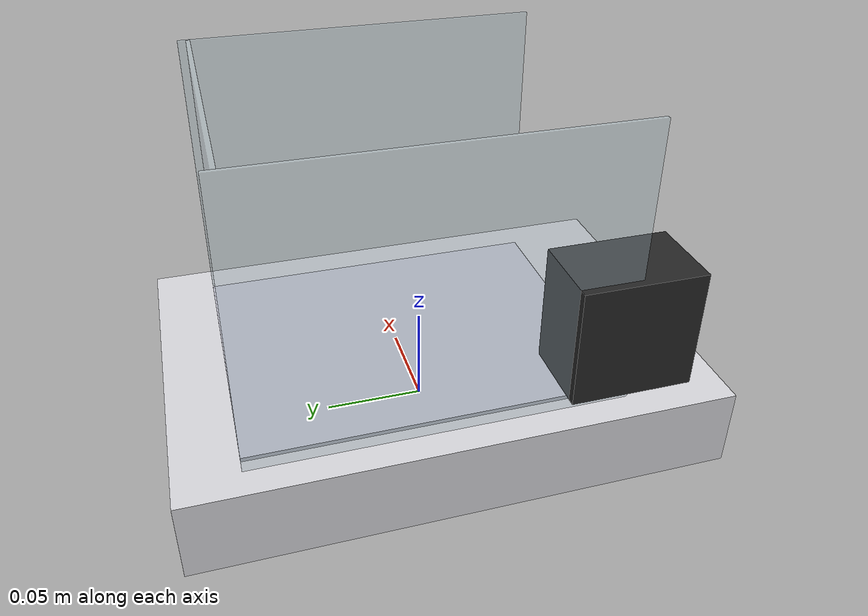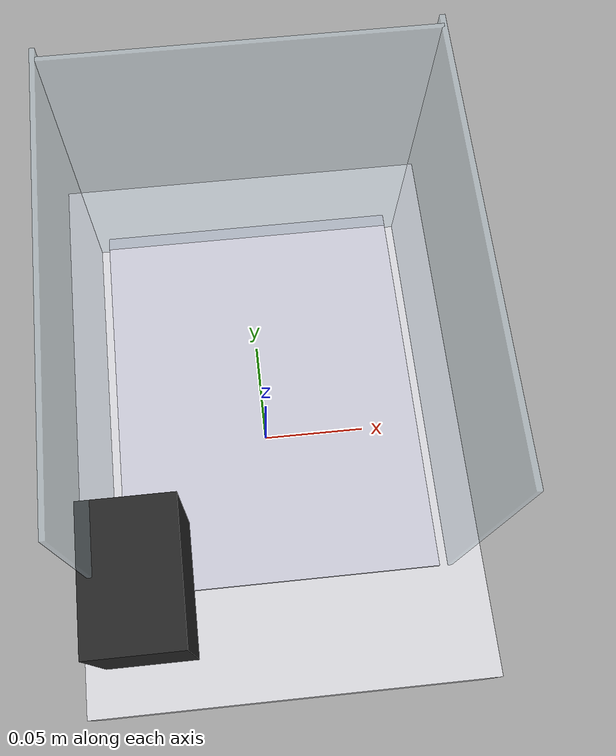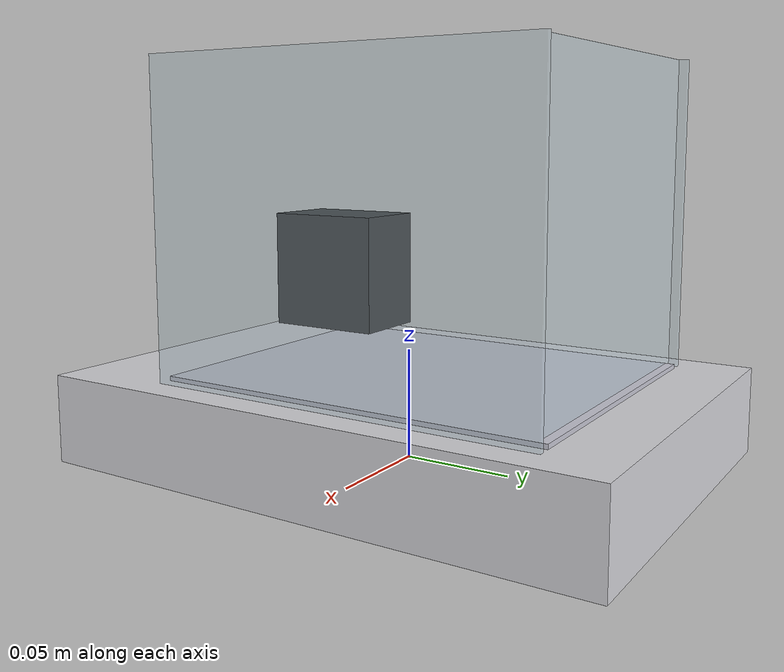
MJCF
<?xml version="1.0" encoding="utf-8"?>
<mujoco model="analytical_balance">
  <compiler angle="radian" autolimits="true"/>
  <default>
    <default class="body"><geom contype="1" conaffinity="1"/></default>
  </default>
  <worldbody>
    <body name="base">
      <geom type="box" size="0.09 0.13 0.02" pos="0 0 0.02" rgba="0.85 0.85 0.87 1" class="body"/>
      <geom type="box" size="0.02 0.03 0.03" pos="-0.06 -0.08 0.075" rgba="0.15 0.15 0.15 1" class="body"/>
      <geom type="box" size="0.07 0.09 0.001" pos="0 0.01 0.041" rgba="0.8 0.8 0.85 1" class="body"/>
      <geom type="box" size="0.075 0.001 0.09" pos="0 0.095 0.09" rgba="0.75 0.85 0.9 0.35" class="body"/>
      <geom type="box" size="0.001 0.09 0.09" pos="0.075 0.01 0.09" rgba="0.75 0.85 0.9 0.35" class="body"/>
      <body name="draft_door" pos="-0.075 0.01 0.09">
        <joint name="draft_door_joint" type="slide" axis="1 0 0" range="-0.10 0" damping="2" frictionloss="0.5"/>
  <geom type="box" size="0.001 0.09 0.09" pos="0 0 0" rgba="0.75 0.85 0.9 0.35" class="body"/>
      </body>
    </body>
  </worldbody>
</mujoco>
